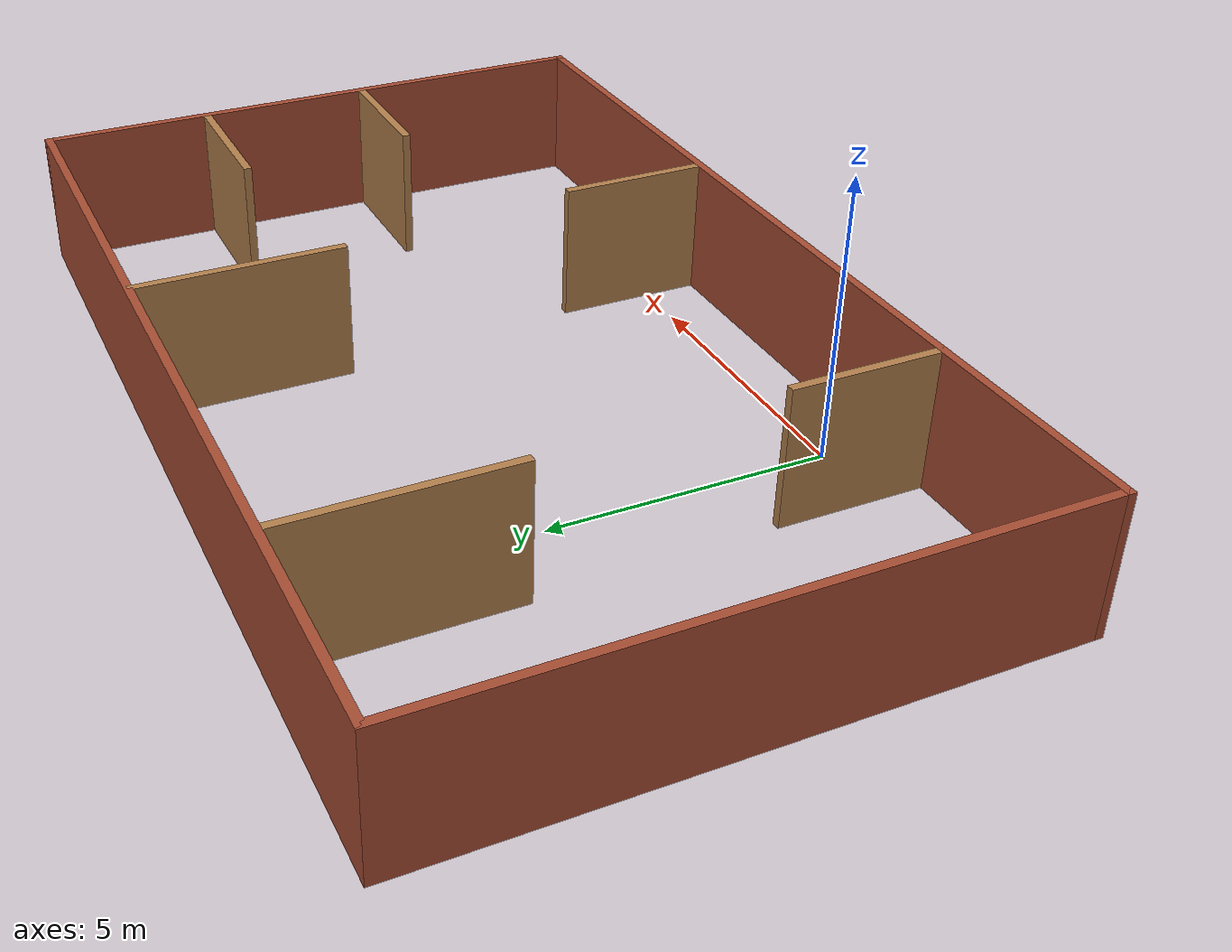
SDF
<?xml version='1.0'?>
<sdf version='1.6'>
  <model name='world'>
    <pose frame=''>3.375 4.405 0 0 -0 0</pose>
    <link name='Wall_0'>
      <collision name='Wall_0_Collision'>
        <geometry>
          <box>
            <size>11 0.15 2.5</size>
          </box>
        </geometry>
        <pose frame=''>0 0 1.25 0 -0 0</pose>
      </collision>
      <visual name='Wall_0_Visual'>
        <pose frame=''>0 0 1.25 0 -0 0</pose>
        <geometry>
          <box>
            <size>11 0.15 2.5</size>
          </box>
        </geometry>
        <material>
          <script>
            <uri>file://media/materials/scripts/gazebo.material</uri>
            <name>Gazebo/Bricks</name>
          </script>
          <ambient>1 1 1 1</ambient>
        </material>
        <meta>
          <layer>0</layer>
        </meta>
      </visual>
      <pose frame=''>-8.675 0 0 0 -0 1.5708</pose>
    </link>
    <link name='Wall_1'>
      <collision name='Wall_1_Collision'>
        <geometry>
          <box>
            <size>17.5 0.15 2.5</size>
          </box>
        </geometry>
        <pose frame=''>0 0 1.25 0 -0 0</pose>
      </collision>
      <visual name='Wall_1_Visual'>
        <pose frame=''>0 0 1.25 0 -0 0</pose>
        <geometry>
          <box>
            <size>17.5 0.15 2.5</size>
          </box>
        </geometry>
        <material>
          <script>
            <uri>file://media/materials/scripts/gazebo.material</uri>
            <name>Gazebo/Bricks</name>
          </script>
          <ambient>1 1 1 1</ambient>
        </material>
        <meta>
          <layer>0</layer>
        </meta>
      </visual>
      <pose frame=''>0 5.425 0 0 -0 0</pose>
    </link>
    <link name='Wall_13'>
      <collision name='Wall_13_Collision'>
        <geometry>
          <box>
            <size>4 0.15 2.5</size>
          </box>
        </geometry>
        <pose frame=''>0 0 1.25 0 -0 0</pose>
      </collision>
      <visual name='Wall_13_Visual'>
        <pose frame=''>0 0 1.25 0 -0 0</pose>
        <geometry>
          <box>
            <size>4 0.15 2.5</size>
          </box>
        </geometry>
        <material>
          <script>
            <uri>file://media/materials/scripts/gazebo.material</uri>
            <name>Gazebo/Wood</name>
          </script>
          <ambient>1 1 1 1</ambient>
        </material>
        <meta>
          <layer>0</layer>
        </meta>
      </visual>
      <pose frame=''>-4.76685 3.48307 0 0 -0 -1.5708</pose>
    </link>
    <link name='Wall_15'>
      <collision name='Wall_15_Collision'>
        <geometry>
          <box>
            <size>3.75 0.15 2.5</size>
          </box>
        </geometry>
        <pose frame=''>0 0 1.25 0 -0 0</pose>
      </collision>
      <visual name='Wall_15_Visual'>
        <pose frame=''>0 0 1.25 0 -0 0</pose>
        <geometry>
          <box>
            <size>3.75 0.15 2.5</size>
          </box>
        </geometry>
        <material>
          <script>
            <uri>file://media/materials/scripts/gazebo.material</uri>
            <name>Gazebo/Wood</name>
          </script>
          <ambient>1 1 1 1</ambient>
        </material>
        <meta>
          <layer>0</layer>
        </meta>
      </visual>
      <pose frame=''>2.24006 3.56286 0 0 -0 -1.5708</pose>
    </link>
    <link name='Wall_22'>
      <collision name='Wall_22_Collision'>
        <geometry>
          <box>
            <size>2.5 0.15 2.5</size>
          </box>
        </geometry>
        <pose frame=''>0 0 1.25 0 -0 0</pose>
      </collision>
      <visual name='Wall_22_Visual'>
        <pose frame=''>0 0 1.25 0 -0 0</pose>
        <geometry>
          <box>
            <size>2.5 0.15 2.5</size>
          </box>
        </geometry>
        <material>
          <script>
            <uri>file://media/materials/scripts/gazebo.material</uri>
            <name>Gazebo/Wood</name>
          </script>
          <ambient>1 1 1 1</ambient>
        </material>
        <meta>
          <layer>0</layer>
        </meta>
      </visual>
      <pose frame=''>7.3639 -0.914631 0 0 -0 0</pose>
    </link>
    <link name='Wall_24'>
      <collision name='Wall_24_Collision'>
        <geometry>
          <box>
            <size>2.75 0.15 2.5</size>
          </box>
        </geometry>
        <pose frame=''>0 0 1.25 0 -0 0</pose>
      </collision>
      <visual name='Wall_24_Visual'>
        <pose frame=''>0 0 1.25 0 -0 0</pose>
        <geometry>
          <box>
            <size>2.75 0.15 2.5</size>
          </box>
        </geometry>
        <material>
          <script>
            <uri>file://media/materials/scripts/gazebo.material</uri>
            <name>Gazebo/Wood</name>
          </script>
          <ambient>1 1 1 1</ambient>
        </material>
        <meta>
          <layer>0</layer>
        </meta>
      </visual>
      <pose frame=''>7.26597 2.32524 0 0 -0 0</pose>
    </link>
    <link name='Wall_4'>
      <collision name='Wall_4_Collision'>
        <geometry>
          <box>
            <size>11 0.15 2.5</size>
          </box>
        </geometry>
        <pose frame=''>0 0 1.25 0 -0 0</pose>
      </collision>
      <visual name='Wall_4_Visual'>
        <pose frame=''>0 0 1.25 0 -0 0</pose>
        <geometry>
          <box>
            <size>11 0.15 2.5</size>
          </box>
        </geometry>
        <material>
          <script>
            <uri>file://media/materials/scripts/gazebo.material</uri>
            <name>Gazebo/Bricks</name>
          </script>
          <ambient>1 1 1 1</ambient>
        </material>
        <meta>
          <layer>0</layer>
        </meta>
      </visual>
      <pose frame=''>8.675 0 0 0 -0 -1.5708</pose>
    </link>
    <link name='Wall_5'>
      <collision name='Wall_5_Collision'>
        <geometry>
          <box>
            <size>17.5 0.15 2.5</size>
          </box>
        </geometry>
        <pose frame=''>0 0 1.25 0 -0 0</pose>
      </collision>
      <visual name='Wall_5_Visual'>
        <pose frame=''>0 0 1.25 0 -0 0</pose>
        <geometry>
          <box>
            <size>17.5 0.15 2.5</size>
          </box>
        </geometry>
        <material>
          <script>
            <uri>file://media/materials/scripts/gazebo.material</uri>
            <name>Gazebo/Bricks</name>
          </script>
          <ambient>1 1 1 1</ambient>
        </material>
        <meta>
          <layer>0</layer>
        </meta>
      </visual>
      <pose frame=''>0 -5.425 0 0 -0 3.14159</pose>
    </link>
    <link name='Wall_7'>
      <collision name='Wall_7_Collision'>
        <geometry>
          <box>
            <size>2.75 0.15 2.5</size>
          </box>
        </geometry>
        <pose frame=''>0 0 1.25 0 -0 0</pose>
      </collision>
      <visual name='Wall_7_Visual'>
        <pose frame=''>0 0 1.25 0 -0 0</pose>
        <geometry>
          <box>
            <size>2.75 0.15 2.5</size>
          </box>
        </geometry>
        <material>
          <script>
            <uri>file://media/materials/scripts/gazebo.material</uri>
            <name>Gazebo/Wood</name>
          </script>
          <ambient>1 1 1 1</ambient>
        </material>
        <meta>
          <layer>0</layer>
        </meta>
      </visual>
      <pose frame=''>-4.66729 -4.07742 0 0 -0 1.5708</pose>
    </link>
    <link name='Wall_9'>
      <collision name='Wall_9_Collision'>
        <geometry>
          <box>
            <size>2.75 0.15 2.5</size>
          </box>
        </geometry>
        <pose frame=''>0 0 1.25 0 -0 0</pose>
      </collision>
      <visual name='Wall_9_Visual'>
        <pose frame=''>0 0 1.25 0 -0 0</pose>
        <geometry>
          <box>
            <size>2.75 0.15 2.5</size>
          </box>
        </geometry>
        <material>
          <script>
            <uri>file://media/materials/scripts/gazebo.material</uri>
            <name>Gazebo/Wood</name>
          </script>
          <ambient>1 1 1 1</ambient>
        </material>
        <meta>
          <layer>0</layer>
        </meta>
      </visual>
      <pose frame=''>2.66162 -4.03833 0 0 -0 1.5708</pose>
    </link>
    <static>1</static>
  </model>
</sdf>
